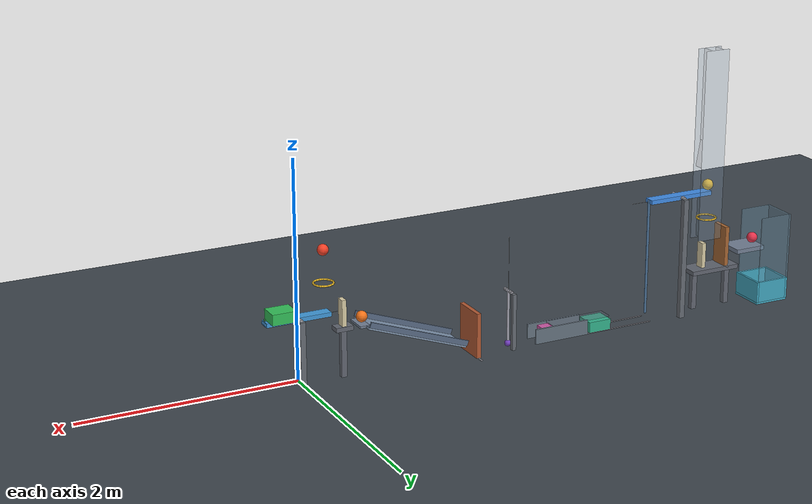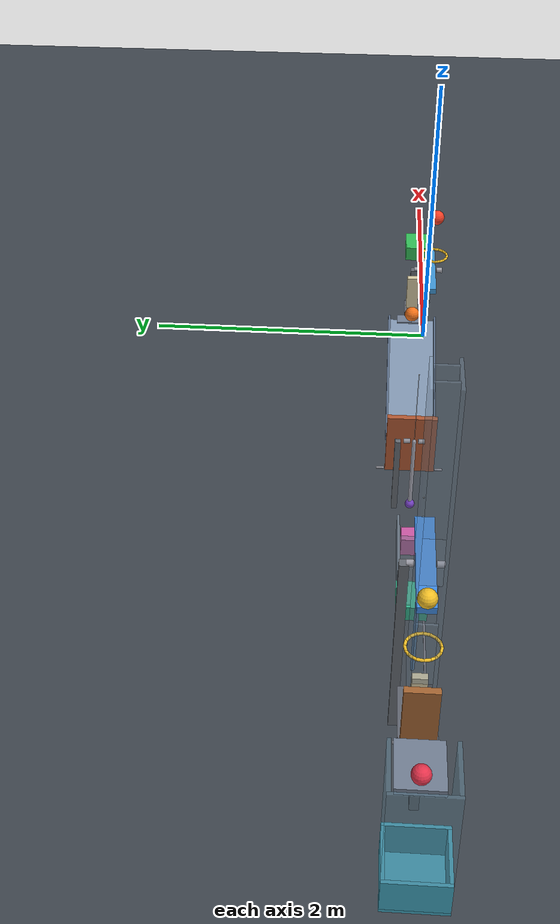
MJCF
<mujoco model="passive_chain_reaction">
  <compiler angle="radian" autolimits="true"/>
  <option timestep="0.002" gravity="0 0 -9.81" integrator="implicitfast" iterations="100" tolerance="1e-10" o_friction="0.72 0.72 0.005 0.0001 0.0001" o_solref="0.01 0.7156" o_solimp="0.95 0.99 0.001">
    <flag override="enable"/>
  </option>
  <size njmax="3000" nconmax="800"/>
  <visual>
    <global azimuth="110" elevation="-25"/>
    <quality shadowsize="2048"/>
    <map znear="0.01" zfar="40"/>
  </visual>

  <worldbody>
    <light name="key_light" pos="-2 -3 6" dir="0 0 -1" diffuse="0.8 0.8 0.8"/>
    <light name="fill_light" pos="-3 3 4" dir="0 0 -1" diffuse="0.45 0.45 0.45"/>
    <camera name="overview" pos="-2.2 -7 3.6" xyaxes="1 0 0 0 0.38 0.925"/>
    <geom name="floor" type="plane" size="8 5 0.1" friction="0.72 0.005 0.0001" rgba="0.24 0.27 0.30 1"/>

    <!-- Passive springs are initially at dead centre. -->
    <site name="lever_spring_anchor" pos="-0.45 0 0.58" size="0.004" rgba="0.7 0.7 0.7 1"/>
    <site name="door_spring_anchor" pos="-1.609693 0.12 -0.29" size="0.004" rgba="0.7 0.7 0.7 1"/>
    <site name="pendulum_spring_anchor" pos="-1.99 0.12 1.03" size="0.004" rgba="0.7 0.7 0.7 1"/>
    <site name="seesaw_spring_anchor" pos="-3.270 0.12 1.15" size="0.004" rgba="0.7 0.7 0.7 1"/>

    <body name="ball1" pos="-0.26 -0.02 1.15">
      <freejoint name="ball1_free"/>
      <geom name="ball1_sphere" type="sphere" size="0.05" mass="0.20" rgba="0.95 0.25 0.15 1"/>
    </body>

    <!-- Circumscribed capsule polygons provide a 0.160 m clear diameter. -->
    <body name="ring1" pos="-0.26 -0.02 0.85">
      <geom name="ring1_01" type="capsule" fromto="0.089724 0 0 0.082894 0.034336 0" size="0.008" rgba="0.95 0.75 0.15 1"/>
      <geom name="ring1_02" type="capsule" fromto="0.082894 0.034336 0 0.063444 0.063444 0" size="0.008" rgba="0.95 0.75 0.15 1"/>
      <geom name="ring1_03" type="capsule" fromto="0.063444 0.063444 0 0.034336 0.082894 0" size="0.008" rgba="0.95 0.75 0.15 1"/>
      <geom name="ring1_04" type="capsule" fromto="0.034336 0.082894 0 0 0.089724 0" size="0.008" rgba="0.95 0.75 0.15 1"/>
      <geom name="ring1_05" type="capsule" fromto="0 0.089724 0 -0.034336 0.082894 0" size="0.008" rgba="0.95 0.75 0.15 1"/>
      <geom name="ring1_06" type="capsule" fromto="-0.034336 0.082894 0 -0.063444 0.063444 0" size="0.008" rgba="0.95 0.75 0.15 1"/>
      <geom name="ring1_07" type="capsule" fromto="-0.063444 0.063444 0 -0.082894 0.034336 0" size="0.008" rgba="0.95 0.75 0.15 1"/>
      <geom name="ring1_08" type="capsule" fromto="-0.082894 0.034336 0 -0.089724 0 0" size="0.008" rgba="0.95 0.75 0.15 1"/>
      <geom name="ring1_09" type="capsule" fromto="-0.089724 0 0 -0.082894 -0.034336 0" size="0.008" rgba="0.95 0.75 0.15 1"/>
      <geom name="ring1_10" type="capsule" fromto="-0.082894 -0.034336 0 -0.063444 -0.063444 0" size="0.008" rgba="0.95 0.75 0.15 1"/>
      <geom name="ring1_11" type="capsule" fromto="-0.063444 -0.063444 0 -0.034336 -0.082894 0" size="0.008" rgba="0.95 0.75 0.15 1"/>
      <geom name="ring1_12" type="capsule" fromto="-0.034336 -0.082894 0 0 -0.089724 0" size="0.008" rgba="0.95 0.75 0.15 1"/>
      <geom name="ring1_13" type="capsule" fromto="0 -0.089724 0 0.034336 -0.082894 0" size="0.008" rgba="0.95 0.75 0.15 1"/>
      <geom name="ring1_14" type="capsule" fromto="0.034336 -0.082894 0 0.063444 -0.063444 0" size="0.008" rgba="0.95 0.75 0.15 1"/>
      <geom name="ring1_15" type="capsule" fromto="0.063444 -0.063444 0 0.082894 -0.034336 0" size="0.008" rgba="0.95 0.75 0.15 1"/>
      <geom name="ring1_16" type="capsule" fromto="0.082894 -0.034336 0 0.089724 0 0" size="0.008" rgba="0.95 0.75 0.15 1"/>
    </body>

    <body name="lever1" pos="0 0 0.58">
      <inertial pos="0 0 0" mass="0.50" diaginertia="0.000483333 0.015066667 0.015416667"/>
      <joint name="lever1_hinge" type="hinge" axis="0 -1 0" damping="0.04" limited="true" range="0 0.785398163" solreflimit="0.004 1"/>
      <geom name="lever1_beam" type="box" size="0.30 0.05 0.02" mass="0" rgba="0.25 0.60 0.85 1"/>
      <geom name="lever1_kicker" type="capsule" fromto="0.30 -0.035 0 0.30 0.035 0" size="0.012" mass="0" rgba="0.20 0.45 0.65 1"/>
      <site name="lever_spring_tip" pos="0.28 0 0" size="0.004"/>
    </body>

    <!-- Post and split bearings are outside the moving beam's width. -->
    <body name="lever1_mount" pos="0 0 0.29">
      <geom name="lever1_mount_post" type="box" pos="0 0.10 0" size="0.025 0.025 0.29" rgba="0.40 0.42 0.45 1"/>
      <geom name="lever1_mount_bearing_a" type="cylinder" pos="0 -0.08 0.29" quat="0.707106781 0.707106781 0 0" size="0.018 0.020" rgba="0.65 0.65 0.68 1"/>
      <geom name="lever1_mount_bearing_b" type="cylinder" pos="0 0.08 0.29" quat="0.707106781 0.707106781 0 0" size="0.018 0.020" rgba="0.65 0.65 0.68 1"/>
    </body>

    <body name="cart1" pos="0.18 0.075 0.665">
      <joint name="cart1_slide" type="slide" axis="-1 0 0" damping="0.20" limited="true" range="0 0.42" solreflimit="0.006 1"/>
      <geom name="cart1_box" type="box" size="0.11 0.09 0.05" mass="0.50" rgba="0.20 0.75 0.35 1"/>
      <geom name="cart1_roller" type="sphere" pos="0.115 -0.075 -0.050" size="0.012" mass="0" rgba="0.15 0.35 0.20 1"/>
    </body>

    <!-- The slide joint supplies cart1's guide; intersecting decorative rails are omitted. -->

    <body name="domino1" pos="-0.37 0.12 0.612020143">
      <freejoint name="domino1_free"/>
      <geom name="domino1_box" type="box" size="0.02 0.04 0.12" mass="0.25" rgba="0.85 0.80 0.65 1"/>
    </body>

    <body name="domino1_support" pos="-0.37 0.12 0.472020143">
      <geom name="domino1_support_top" type="box" size="0.08 0.05 0.02" rgba="0.38 0.40 0.44 1"/>
      <geom name="domino1_support_leg" type="box" pos="0 0 -0.2260100715" size="0.025 0.025 0.2260100715" rgba="0.38 0.40 0.44 1"/>
    </body>

    <body name="ball2" pos="-0.55 0.12 0.542020143">
      <freejoint name="ball2_free"/>
      <geom name="ball2_sphere" type="sphere" size="0.05" mass="0.20" rgba="0.95 0.45 0.10 1"/>
    </body>

    <!-- This horizontal entry holds ball2 until domino1 pushes it onto the slope. -->
    <body name="ramp1_entry" pos="-0.535 0.12 0.482020143">
      <geom name="ramp1_entry_plate" type="box" size="0.045 0.10 0.01" rgba="0.45 0.50 0.58 1"/>
    </body>

    <body name="ramp1" pos="-1.016426169 0.12 0.311613145" quat="0.984807753 0 -0.173648178 0">
      <geom name="ramp1_surface" type="box" size="0.50 0.15 0.01" rgba="0.50 0.58 0.68 1"/>
      <geom name="ramp1_side_a" type="box" pos="0 -0.157 0.035" size="0.50 0.007 0.025" rgba="0.35 0.42 0.52 1"/>
      <geom name="ramp1_side_b" type="box" pos="0 0.157 0.035" size="0.50 0.007 0.025" rgba="0.35 0.42 0.52 1"/>
    </body>

    <body name="door1" pos="-1.609693 0.12 0.01">
      <joint name="door1_hinge" type="hinge" axis="0 -1 0" damping="0.04" limited="true" range="0 1.221730476" solreflimit="0.004 1"/>
      <geom name="door1_panel" type="box" pos="0 0 0.21" size="0.02 0.16 0.21" mass="0.45" rgba="0.70 0.35 0.20 1"/>
      <site name="door_spring_tip" pos="0 0 0.35" size="0.004"/>
    </body>

    <body name="door1_mount" pos="-1.609693 0.12 0.01">
      <geom name="door1_mount_bearing_a" type="cylinder" pos="0 -0.19 0" quat="0.707106781 0.707106781 0 0" size="0.008 0.025" rgba="0.55 0.55 0.58 1"/>
      <geom name="door1_mount_bearing_b" type="cylinder" pos="0 0.19 0" quat="0.707106781 0.707106781 0 0" size="0.008 0.025" rgba="0.55 0.55 0.58 1"/>
    </body>

    <body name="pendulum1" pos="-1.99 0.12 0.53">
      <joint name="pendulum1_hinge" type="hinge" axis="0 1 0" damping="0.04" limited="true" range="0 0.663225116" solreflimit="0.006 1"/>
      <geom name="pendulum1_rod" type="capsule" fromto="0 0 0 0 0 -0.50" size="0.012" mass="0.07" rgba="0.65 0.65 0.70 1"/>
      <geom name="pendulum1_bob" type="sphere" pos="0 0 -0.50" size="0.03" mass="0.28" rgba="0.45 0.25 0.75 1"/>
      <site name="pendulum_spring_tip" pos="0 0 -0.50" size="0.004"/>
    </body>

    <body name="pendulum1_mount" pos="-1.99 0.12 0.53">
      <geom name="pendulum1_mount_bearing_a" type="cylinder" pos="0 -0.045 0" quat="0.707106781 0.707106781 0 0" size="0.015 0.020" rgba="0.55 0.55 0.58 1"/>
      <geom name="pendulum1_mount_bearing_b" type="cylinder" pos="0 0.045 0" quat="0.707106781 0.707106781 0 0" size="0.015 0.020" rgba="0.55 0.55 0.58 1"/>
      <geom name="pendulum1_mount_post" type="box" pos="0 0.10 -0.265" size="0.018 0.018 0.265" rgba="0.40 0.42 0.45 1"/>
    </body>

    <body name="block1" pos="-2.383 0.12 0.06">
      <freejoint name="block1_free"/>
      <geom name="block1_box" type="box" size="0.06 0.06 0.06" mass="0.35" rgba="0.80 0.35 0.65 1"/>
    </body>

    <!-- Side guides terminate 20 mm before cart2's initial right face. -->
    <body name="block1_guide" pos="-2.66 0.12 0">
      <geom name="block1_guide_a" type="box" pos="0.157 -0.077 0.070" size="0.270 0.008 0.070" rgba="0.40 0.45 0.50 1"/>
      <geom name="block1_guide_b" type="box" pos="0.157 0.077 0.070" size="0.270 0.008 0.070" rgba="0.40 0.45 0.50 1"/>
      <geom name="block1_guide_roof" type="box" pos="-0.0565 0 0.132" size="0.2935 0.068 0.005" rgba="0.40 0.45 0.50 0.35"/>
    </body>

    <body name="cart2" pos="-2.903 0.12 0.06">
      <joint name="cart2_slide" type="slide" axis="-1 0 0" damping="0.20" limited="true" range="0 0.42" solreflimit="0.006 1"/>
      <geom name="cart2_box" type="box" size="0.11 0.09 0.05" mass="0.50" rgba="0.20 0.70 0.55 1"/>
    </body>

    <body name="cart2_rail" pos="-3.113 0.12 0.004">
      <geom name="cart2_rail_a" type="box" pos="0 -0.075 0" size="0.34 0.006 0.004" rgba="0.45 0.45 0.48 1"/>
      <geom name="cart2_rail_b" type="box" pos="0 0.075 0" size="0.34 0.006 0.004" rgba="0.45 0.45 0.48 1"/>
    </body>

    <!-- A low striker extension connects cart2 to the elevated seesaw. -->
    <body name="seesaw1" pos="-3.770 0.12 1.15">
      <inertial pos="0 0 0" mass="0.55" diaginertia="0.000531667 0.019437917 0.019822917"/>
      <joint name="seesaw1_hinge" type="hinge" axis="0 1 0" damping="0.04" limited="true" range="0 0.733038286" solreflimit="0.004 1"/>
      <geom name="seesaw1_beam" type="box" size="0.325 0.05 0.02" mass="0" rgba="0.25 0.55 0.90 1"/>
      <geom name="seesaw1_striker_extension" type="capsule" fromto="0.325 0 0 0.325 0 -1.08" size="0.012" mass="0" rgba="0.30 0.45 0.60 1"/>
      <site name="seesaw_spring_tip" pos="-0.30 0 0" size="0.004"/>
    </body>

    <body name="seesaw1_mount" pos="-3.770 0.12 0.575">
      <geom name="seesaw1_mount_post" type="box" pos="0 0.105 0" size="0.025 0.025 0.575" rgba="0.40 0.42 0.45 1"/>
      <geom name="seesaw1_mount_bearing_a" type="cylinder" pos="0 -0.075 0.575" quat="0.707106781 0.707106781 0 0" size="0.018 0.020" rgba="0.60 0.60 0.64 1"/>
      <geom name="seesaw1_mount_bearing_b" type="cylinder" pos="0 0.075 0.575" quat="0.707106781 0.707106781 0 0" size="0.018 0.020" rgba="0.60 0.60 0.64 1"/>
    </body>

    <body name="ball3" pos="-4.085 0.12 1.22">
      <freejoint name="ball3_free"/>
      <geom name="ball3_sphere" type="sphere" size="0.05" mass="0.20" rgba="0.95 0.75 0.15 1"/>
    </body>

    <!-- Beam-clearance window and tapered entrance in the launch guide. -->
    <body name="ball3_launch_guide" pos="-4.085 0.12 0">
      <geom name="ball3_launch_guide_y_a" type="box" pos="0 -0.063 1.60" size="0.12 0.008 0.90" rgba="0.55 0.65 0.75 0.30"/>
      <geom name="ball3_launch_guide_y_b" type="box" pos="0 0.063 1.60" size="0.12 0.008 0.90" rgba="0.55 0.65 0.75 0.30"/>
      <geom name="ball3_launch_guide_lower_a" type="box" pos="-0.063 0 0.9175" size="0.008 0.055 0.1975" rgba="0.55 0.65 0.75 0.30"/>
      <geom name="ball3_launch_guide_lower_b" type="box" pos="0.063 0 0.9175" size="0.008 0.055 0.1975" rgba="0.55 0.65 0.75 0.30"/>
      <geom name="ball3_launch_guide_taper_a" type="box" pos="-0.08 0 1.525" quat="0.996856 0 0.079244 0" size="0.006 0.055 0.12659" rgba="0.55 0.65 0.75 0.30"/>
      <geom name="ball3_launch_guide_taper_b" type="box" pos="0.08 0 1.525" quat="0.996856 0 -0.079244 0" size="0.006 0.055 0.12659" rgba="0.55 0.65 0.75 0.30"/>
      <geom name="ball3_launch_guide_upper_a" type="box" pos="-0.061 0 2.075" size="0.008 0.055 0.425" rgba="0.55 0.65 0.75 0.30"/>
      <geom name="ball3_launch_guide_upper_b" type="box" pos="0.061 0 2.075" size="0.008 0.055 0.425" rgba="0.55 0.65 0.75 0.30"/>
    </body>

    <body name="ring2" pos="-4.085 0.12 0.90">
      <geom name="ring2_01" type="capsule" fromto="0.089724 0 0 0.082894 0.034336 0" size="0.008" rgba="0.95 0.75 0.15 1"/>
      <geom name="ring2_02" type="capsule" fromto="0.082894 0.034336 0 0.063444 0.063444 0" size="0.008" rgba="0.95 0.75 0.15 1"/>
      <geom name="ring2_03" type="capsule" fromto="0.063444 0.063444 0 0.034336 0.082894 0" size="0.008" rgba="0.95 0.75 0.15 1"/>
      <geom name="ring2_04" type="capsule" fromto="0.034336 0.082894 0 0 0.089724 0" size="0.008" rgba="0.95 0.75 0.15 1"/>
      <geom name="ring2_05" type="capsule" fromto="0 0.089724 0 -0.034336 0.082894 0" size="0.008" rgba="0.95 0.75 0.15 1"/>
      <geom name="ring2_06" type="capsule" fromto="-0.034336 0.082894 0 -0.063444 0.063444 0" size="0.008" rgba="0.95 0.75 0.15 1"/>
      <geom name="ring2_07" type="capsule" fromto="-0.063444 0.063444 0 -0.082894 0.034336 0" size="0.008" rgba="0.95 0.75 0.15 1"/>
      <geom name="ring2_08" type="capsule" fromto="-0.082894 0.034336 0 -0.089724 0 0" size="0.008" rgba="0.95 0.75 0.15 1"/>
      <geom name="ring2_09" type="capsule" fromto="-0.089724 0 0 -0.082894 -0.034336 0" size="0.008" rgba="0.95 0.75 0.15 1"/>
      <geom name="ring2_10" type="capsule" fromto="-0.082894 -0.034336 0 -0.063444 -0.063444 0" size="0.008" rgba="0.95 0.75 0.15 1"/>
      <geom name="ring2_11" type="capsule" fromto="-0.063444 -0.063444 0 -0.034336 -0.082894 0" size="0.008" rgba="0.95 0.75 0.15 1"/>
      <geom name="ring2_12" type="capsule" fromto="-0.034336 -0.082894 0 0 -0.089724 0" size="0.008" rgba="0.95 0.75 0.15 1"/>
      <geom name="ring2_13" type="capsule" fromto="0 -0.089724 0 0.034336 -0.082894 0" size="0.008" rgba="0.95 0.75 0.15 1"/>
      <geom name="ring2_14" type="capsule" fromto="0.034336 -0.082894 0 0.063444 -0.063444 0" size="0.008" rgba="0.95 0.75 0.15 1"/>
      <geom name="ring2_15" type="capsule" fromto="0.063444 -0.063444 0 0.082894 -0.034336 0" size="0.008" rgba="0.95 0.75 0.15 1"/>
      <geom name="ring2_16" type="capsule" fromto="0.082894 -0.034336 0 0.089724 0 0" size="0.008" rgba="0.95 0.75 0.15 1"/>
    </body>

    <body name="domino2" pos="-4.05 0.12 0.54">
      <freejoint name="domino2_free"/>
      <geom name="domino2_box" type="box" size="0.02 0.04 0.12" mass="0.25" rgba="0.85 0.80 0.65 1"/>
    </body>

    <body name="domino2_support" pos="-4.15 0.12 0.40">
      <geom name="domino2_support_top" type="box" size="0.25 0.10 0.02" rgba="0.38 0.40 0.44 1"/>
      <geom name="domino2_support_leg_a" type="box" pos="0.18 0 -0.19" size="0.025 0.025 0.19" rgba="0.38 0.40 0.44 1"/>
      <geom name="domino2_support_leg_b" type="box" pos="-0.18 0 -0.19" size="0.025 0.025 0.19" rgba="0.38 0.40 0.44 1"/>
    </body>

    <body name="flap1" pos="-4.27 0.12 0.42">
      <joint name="flap1_hinge" type="hinge" axis="0 -1 0" damping="0.04" limited="true" range="0 1.047197551" solreflimit="0.004 1"/>
      <geom name="flap1_panel" type="box" pos="0 0 0.19" size="0.02 0.09 0.19" mass="0.28" rgba="0.65 0.40 0.20 1"/>
    </body>

    <body name="flap1_mount" pos="-4.27 0.12 0.42">
      <geom name="flap1_mount_bearing_a" type="cylinder" pos="0 -0.11 0" quat="0.707106781 0.707106781 0 0" size="0.008 0.015" rgba="0.55 0.55 0.58 1"/>
      <geom name="flap1_mount_bearing_b" type="cylinder" pos="0 0.11 0" quat="0.707106781 0.707106781 0 0" size="0.008 0.015" rgba="0.55 0.55 0.58 1"/>
    </body>

    <body name="ball4" pos="-4.62 0.12 0.62">
      <freejoint name="ball4_free"/>
      <geom name="ball4_sphere" type="sphere" size="0.05" mass="0.20" rgba="0.90 0.20 0.30 1"/>
    </body>

    <body name="shelf1" pos="-4.52 0.12 0.55">
      <geom name="shelf1_plate" type="box" size="0.15 0.125 0.02" rgba="0.45 0.50 0.58 1"/>
    </body>

    <!-- Interior bottom is z=0.02; shelf top is 0.55 m above it. -->
    <body name="cup1" pos="-4.76 0.12 0">
      <geom name="cup1_bottom" type="box" pos="0 0 0.01" size="0.17 0.17 0.01" rgba="0.25 0.65 0.75 1"/>
      <geom name="cup1_wall_x_minus" type="box" pos="-0.16 0 0.12" size="0.01 0.17 0.10" rgba="0.25 0.65 0.75 1"/>
      <geom name="cup1_wall_x_plus" type="box" pos="0.16 0 0.12" size="0.01 0.17 0.10" rgba="0.25 0.65 0.75 1"/>
      <geom name="cup1_wall_y_minus" type="box" pos="0 -0.16 0.12" size="0.15 0.01 0.10" rgba="0.25 0.65 0.75 1"/>
      <geom name="cup1_wall_y_plus" type="box" pos="0 0.16 0.12" size="0.15 0.01 0.10" rgba="0.25 0.65 0.75 1"/>
    </body>

    <body name="cup1_catch_guide" pos="-4.76 0.12 0">
      <geom name="cup1_catch_guide_back" type="box" pos="-0.16 0 0.535" size="0.01 0.17 0.315" rgba="0.45 0.65 0.75 0.35"/>
      <geom name="cup1_catch_guide_side_a" type="box" pos="0 -0.16 0.535" size="0.15 0.01 0.315" rgba="0.45 0.65 0.75 0.35"/>
      <geom name="cup1_catch_guide_side_b" type="box" pos="0 0.16 0.535" size="0.15 0.01 0.315" rgba="0.45 0.65 0.75 0.35"/>
    </body>
  </worldbody>

  <tendon>
    <spatial name="lever1_toggle_spring" stiffness="80" damping="0.02" springlength="0.15 0.15" width="0.002" rgba="0.7 0.7 0.7 0.5">
      <site site="lever_spring_anchor"/>
      <site site="lever_spring_tip"/>
    </spatial>
    <spatial name="door1_toggle_spring" stiffness="12" damping="0.02" springlength="0.15 0.15" width="0.002" rgba="0.7 0.7 0.7 0.5">
      <site site="door_spring_anchor"/>
      <site site="door_spring_tip"/>
    </spatial>
    <spatial name="pendulum1_toggle_spring" stiffness="70" damping="0.02" springlength="0.20 0.20" width="0.002" rgba="0.7 0.7 0.7 0.5">
      <site site="pendulum_spring_anchor"/>
      <site site="pendulum_spring_tip"/>
    </spatial>
    <spatial name="seesaw1_toggle_spring" stiffness="100" damping="0.02" springlength="0.10 0.10" width="0.002" rgba="0.7 0.7 0.7 0.5">
      <site site="seesaw_spring_anchor"/>
      <site site="seesaw_spring_tip"/>
    </spatial>
  </tendon>

  <keyframe>
    <key name="start" time="0"/>
  </keyframe>
</mujoco>
